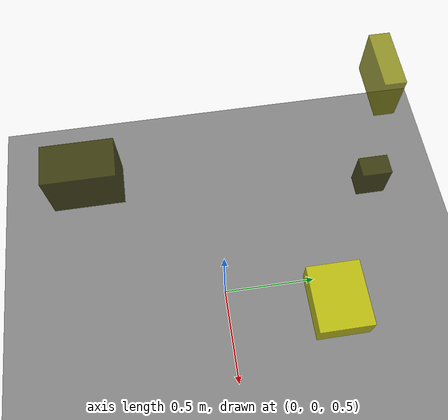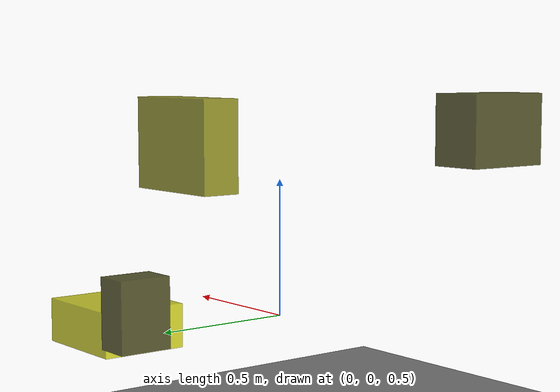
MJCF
<?xml version="1.0"?>
<mujoco model="obstacle_scene">
  <compiler angle="radian" coordinate="local"/>
  <option timestep="0.001" gravity="0 0 -9.81"/>

  <asset>
    <material name="obstacle_mat" rgba="0.8 0.8 0.0 0.8"/>
    <material name="ground_mat" rgba="0.5 0.5 0.5 1"/>
  </asset>

  <worldbody>
    <!-- Ground plane -->
    <geom name="ground" type="plane" size="3 3 0.1" material="ground_mat"/>

    <!-- Obstacles -->
    <body name="obstacle_0" pos="-0.502601 0.917150 0.698060">
      <geom name="obs_0" type="box" size="0.056796 0.081365 0.107411" rgba="0.2 0.2 0.0 0.8"/>
    </body>
    <body name="obstacle_1" pos="-0.804441 0.934003 1.203663">
      <geom name="obs_1" type="box" size="0.158775 0.053268 0.124464" rgba="0.5 0.5 0.0 0.8"/>
    </body>
    <body name="obstacle_2" pos="0.142385 0.602854 0.528739">
      <geom name="obs_2" type="box" size="0.185015 0.149870 0.075641" rgba="0.8 0.8 0.0 0.8"/>
    </body>
    <body name="obstacle_3" pos="-0.450537 -0.606058 1.178079">
      <geom name="obs_3" type="box" size="0.100293 0.169290 0.130517" rgba="0.2 0.2 0.0 0.8"/>
    </body>
  </worldbody>
</mujoco>
